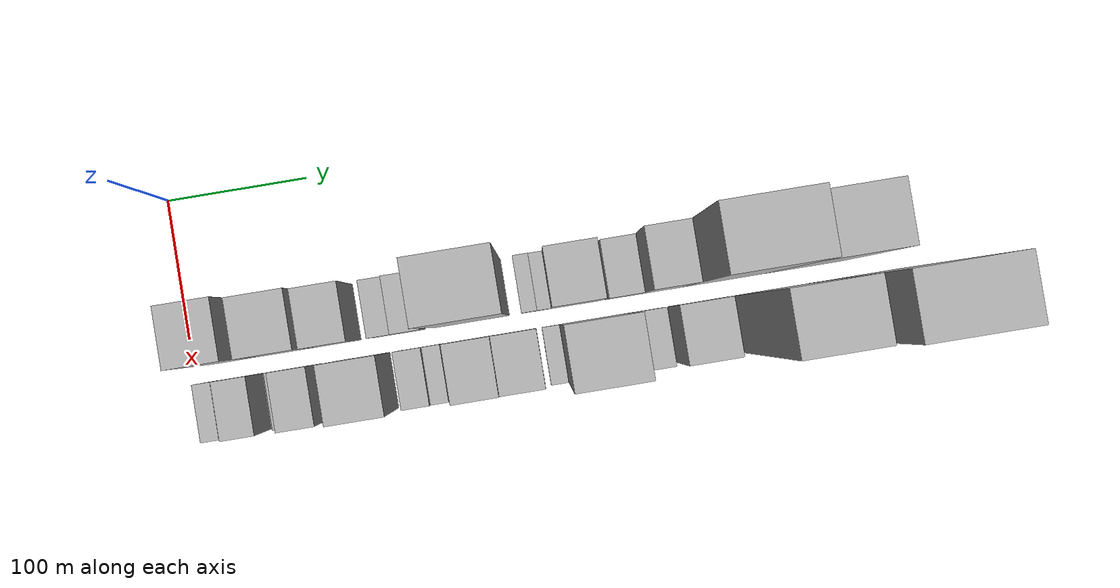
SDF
<sdf version="1.6">
 <world name="default">
  <model name="building_15">
   <static>1</static>
   <pose>100.0000 32.4129 0 0.000000 0.000000 0.000000</pose>
   <link name="link">
    <pose>0 0 51.00 0 0 0</pose>
    <collision name="collision"><geometry><box><size>40.0000 35.5591 102.0000</size></box></geometry></collision>
    <visual name="visual">
     <cast_shadows>0</cast_shadows>
     <geometry><box><size>40.0000 35.5591 102.0000</size></box></geometry>
     <material>
      <script>
       <uri>model://HANNAS_wall/materials/scripts</uri>
       <uri>model://HANNAS_wall/materials/textures</uri>
       <name>vrc/HANNAS_wall</name>
      </script>
     </material>
    </visual>
   </link>
  </model>
  <model name="building_16">
   <static>1</static>
   <pose>100.0000 69.4691 0 0.000000 0.000000 0.000000</pose>
   <link name="link">
    <pose>0 0 37.50 0 0 0</pose>
    <collision name="collision"><geometry><box><size>40.0000 38.5532 75.0000</size></box></geometry></collision>
    <visual name="visual">
     <cast_shadows>0</cast_shadows>
     <geometry><box><size>40.0000 38.5532 75.0000</size></box></geometry>
     <material>
      <script>
       <uri>model://HANNAS_wall/materials/scripts</uri>
       <uri>model://HANNAS_wall/materials/textures</uri>
       <name>vrc/HANNAS_wall</name>
      </script>
     </material>
    </visual>
   </link>
  </model>
  <model name="building_17">
   <static>1</static>
   <pose>100.0000 104.5784 0 0.000000 0.000000 0.000000</pose>
   <link name="link">
    <pose>0 0 30.00 0 0 0</pose>
    <collision name="collision"><geometry><box><size>40.0000 31.6654 60.0000</size></box></geometry></collision>
    <visual name="visual">
     <cast_shadows>0</cast_shadows>
     <geometry><box><size>40.0000 31.6654 60.0000</size></box></geometry>
     <material>
      <script>
       <uri>model://HANNAS_wall/materials/scripts</uri>
       <uri>model://HANNAS_wall/materials/textures</uri>
       <name>vrc/HANNAS_wall</name>
      </script>
     </material>
    </visual>
   </link>
  </model>
  <model name="building_18">
   <static>1</static>
   <pose>100.0000 137.7473 0 0.000000 0.000000 0.000000</pose>
   <link name="link">
    <pose>0 0 16.50 0 0 0</pose>
    <collision name="collision"><geometry><box><size>40.0000 16.6725 33.0000</size></box></geometry></collision>
    <visual name="visual">
     <cast_shadows>0</cast_shadows>
     <geometry><box><size>40.0000 16.6725 33.0000</size></box></geometry>
     <material>
      <script>
       <uri>model://HANNAS_wall/materials/scripts</uri>
       <uri>model://HANNAS_wall/materials/textures</uri>
       <name>vrc/HANNAS_wall</name>
      </script>
     </material>
    </visual>
   </link>
  </model>
  <model name="building_19">
   <static>1</static>
   <pose>100.0000 156.4100 0 0.000000 0.000000 0.000000</pose>
   <link name="link">
    <pose>0 0 19.50 0 0 0</pose>
    <collision name="collision"><geometry><box><size>40.0000 20.6530 39.0000</size></box></geometry></collision>
    <visual name="visual">
     <cast_shadows>0</cast_shadows>
     <geometry><box><size>40.0000 20.6530 39.0000</size></box></geometry>
     <material>
      <script>
       <uri>model://HANNAS_wall/materials/scripts</uri>
       <uri>model://HANNAS_wall/materials/textures</uri>
       <name>vrc/HANNAS_wall</name>
      </script>
     </material>
    </visual>
   </link>
  </model>
  <model name="building_20">
   <static>1</static>
   <pose>100.0000 200.9010 0 0.000000 0.000000 0.000000</pose>
   <link name="link">
    <pose>0 0 79.50 0 0 0</pose>
    <collision name="collision"><geometry><box><size>40.0000 52.3291 159.0000</size></box></geometry></collision>
    <visual name="visual">
     <cast_shadows>0</cast_shadows>
     <geometry><box><size>40.0000 52.3291 159.0000</size></box></geometry>
     <material>
      <script>
       <uri>model://HANNAS_wall/materials/scripts</uri>
       <uri>model://HANNAS_wall/materials/textures</uri>
       <name>vrc/HANNAS_wall</name>
      </script>
     </material>
    </visual>
   </link>
  </model>
  <model name="building_21">
   <static>1</static>
   <pose>100.0000 241.4765 0 0.000000 0.000000 0.000000</pose>
   <link name="link">
    <pose>0 0 13.50 0 0 0</pose>
    <collision name="collision"><geometry><box><size>40.0000 10.8219 27.0000</size></box></geometry></collision>
    <visual name="visual">
     <cast_shadows>0</cast_shadows>
     <geometry><box><size>40.0000 10.8219 27.0000</size></box></geometry>
     <material>
      <script>
       <uri>model://HANNAS_wall/materials/scripts</uri>
       <uri>model://HANNAS_wall/materials/textures</uri>
       <name>vrc/HANNAS_wall</name>
      </script>
     </material>
    </visual>
   </link>
  </model>
  <model name="building_22">
   <static>1</static>
   <pose>100.0000 251.8419 0 0.000000 0.000000 0.000000</pose>
   <link name="link">
    <pose>0 0 12.00 0 0 0</pose>
    <collision name="collision"><geometry><box><size>40.0000 9.9089 24.0000</size></box></geometry></collision>
    <visual name="visual">
     <cast_shadows>0</cast_shadows>
     <geometry><box><size>40.0000 9.9089 24.0000</size></box></geometry>
     <material>
      <script>
       <uri>model://HANNAS_wall/materials/scripts</uri>
       <uri>model://HANNAS_wall/materials/textures</uri>
       <name>vrc/HANNAS_wall</name>
      </script>
     </material>
    </visual>
   </link>
  </model>
  <model name="building_23">
   <static>1</static>
   <pose>100.0000 274.8817 0 0.000000 0.000000 0.000000</pose>
   <link name="link">
    <pose>0 0 33.00 0 0 0</pose>
    <collision name="collision"><geometry><box><size>40.0000 36.1708 66.0000</size></box></geometry></collision>
    <visual name="visual">
     <cast_shadows>0</cast_shadows>
     <geometry><box><size>40.0000 36.1708 66.0000</size></box></geometry>
     <material>
      <script>
       <uri>model://HANNAS_wall/materials/scripts</uri>
       <uri>model://HANNAS_wall/materials/textures</uri>
       <name>vrc/HANNAS_wall</name>
      </script>
     </material>
    </visual>
   </link>
  </model>
  <model name="building_24">
   <static>1</static>
   <pose>100.0000 308.1856 0 0.000000 0.000000 0.000000</pose>
   <link name="link">
    <pose>0 0 21.00 0 0 0</pose>
    <collision name="collision"><geometry><box><size>40.0000 24.4369 42.0000</size></box></geometry></collision>
    <visual name="visual">
     <cast_shadows>0</cast_shadows>
     <geometry><box><size>40.0000 24.4369 42.0000</size></box></geometry>
     <material>
      <script>
       <uri>model://HANNAS_wall/materials/scripts</uri>
       <uri>model://HANNAS_wall/materials/textures</uri>
       <name>vrc/HANNAS_wall</name>
      </script>
     </material>
    </visual>
   </link>
  </model>
  <model name="building_25">
   <static>1</static>
   <pose>100.0000 335.5236 0 0.000000 0.000000 0.000000</pose>
   <link name="link">
    <pose>0 0 48.00 0 0 0</pose>
    <collision name="collision"><geometry><box><size>40.0000 30.2390 96.0000</size></box></geometry></collision>
    <visual name="visual">
     <cast_shadows>0</cast_shadows>
     <geometry><box><size>40.0000 30.2390 96.0000</size></box></geometry>
     <material>
      <script>
       <uri>model://HANNAS_wall/materials/scripts</uri>
       <uri>model://HANNAS_wall/materials/textures</uri>
       <name>vrc/HANNAS_wall</name>
      </script>
     </material>
    </visual>
   </link>
  </model>
  <model name="building_26">
   <static>1</static>
   <pose>100.0000 380.3939 0 0.000000 0.000000 0.000000</pose>
   <link name="link">
    <pose>0 0 93.00 0 0 0</pose>
    <collision name="collision"><geometry><box><size>40.0000 59.5017 186.0000</size></box></geometry></collision>
    <visual name="visual">
     <cast_shadows>0</cast_shadows>
     <geometry><box><size>40.0000 59.5017 186.0000</size></box></geometry>
     <material>
      <script>
       <uri>model://HANNAS_wall/materials/scripts</uri>
       <uri>model://HANNAS_wall/materials/textures</uri>
       <name>vrc/HANNAS_wall</name>
      </script>
     </material>
    </visual>
   </link>
  </model>
  <model name="building_27">
   <static>1</static>
   <pose>100.0000 438.4146 0 0.000000 0.000000 0.000000</pose>
   <link name="link">
    <pose>0 0 73.50 0 0 0</pose>
    <collision name="collision"><geometry><box><size>40.0000 56.5395 147.0000</size></box></geometry></collision>
    <visual name="visual">
     <cast_shadows>0</cast_shadows>
     <geometry><box><size>40.0000 56.5395 147.0000</size></box></geometry>
     <material>
      <script>
       <uri>model://HANNAS_wall/materials/scripts</uri>
       <uri>model://HANNAS_wall/materials/textures</uri>
       <name>vrc/HANNAS_wall</name>
      </script>
     </material>
    </visual>
   </link>
  </model>
  <model name="building_40">
   <static>1</static>
   <pose>152.0000 11.8453 0 0.000000 0.000000 0.000000</pose>
   <link name="link">
    <pose>0 0 13.50 0 0 0</pose>
    <collision name="collision"><geometry><box><size>40.0000 12.7696 27.0000</size></box></geometry></collision>
    <visual name="visual">
     <cast_shadows>0</cast_shadows>
     <geometry><box><size>40.0000 12.7696 27.0000</size></box></geometry>
     <material>
      <script>
       <uri>model://HANNAS_wall/materials/scripts</uri>
       <uri>model://HANNAS_wall/materials/textures</uri>
       <name>vrc/HANNAS_wall</name>
      </script>
     </material>
    </visual>
   </link>
  </model>
  <model name="building_41">
   <static>1</static>
   <pose>152.0000 35.9903 0 0.000000 0.000000 0.000000</pose>
   <link name="link">
    <pose>0 0 22.50 0 0 0</pose>
    <collision name="collision"><geometry><box><size>40.0000 23.5203 45.0000</size></box></geometry></collision>
    <visual name="visual">
     <cast_shadows>0</cast_shadows>
     <geometry><box><size>40.0000 23.5203 45.0000</size></box></geometry>
     <material>
      <script>
       <uri>model://HANNAS_wall/materials/scripts</uri>
       <uri>model://HANNAS_wall/materials/textures</uri>
       <name>vrc/HANNAS_wall</name>
      </script>
     </material>
    </visual>
   </link>
  </model>
  <model name="building_42">
   <static>1</static>
   <pose>152.0000 58.6183 0 0.000000 0.000000 0.000000</pose>
   <link name="link">
    <pose>0 0 10.50 0 0 0</pose>
    <collision name="collision"><geometry><box><size>40.0000 9.7357 21.0000</size></box></geometry></collision>
    <visual name="visual">
     <cast_shadows>0</cast_shadows>
     <geometry><box><size>40.0000 9.7357 21.0000</size></box></geometry>
     <material>
      <script>
       <uri>model://HANNAS_wall/materials/scripts</uri>
       <uri>model://HANNAS_wall/materials/textures</uri>
       <name>vrc/HANNAS_wall</name>
      </script>
     </material>
    </visual>
   </link>
  </model>
  <model name="building_43">
   <static>1</static>
   <pose>152.0000 76.5070 0 0.000000 0.000000 0.000000</pose>
   <link name="link">
    <pose>0 0 25.50 0 0 0</pose>
    <collision name="collision"><geometry><box><size>40.0000 26.0417 51.0000</size></box></geometry></collision>
    <visual name="visual">
     <cast_shadows>0</cast_shadows>
     <geometry><box><size>40.0000 26.0417 51.0000</size></box></geometry>
     <material>
      <script>
       <uri>model://HANNAS_wall/materials/scripts</uri>
       <uri>model://HANNAS_wall/materials/textures</uri>
       <name>vrc/HANNAS_wall</name>
      </script>
     </material>
    </visual>
   </link>
  </model>
  <model name="building_44">
   <static>1</static>
   <pose>152.0000 119.2971 0 0.000000 0.000000 0.000000</pose>
   <link name="link">
    <pose>0 0 34.50 0 0 0</pose>
    <collision name="collision"><geometry><box><size>40.0000 39.5385 69.0000</size></box></geometry></collision>
    <visual name="visual">
     <cast_shadows>0</cast_shadows>
     <geometry><box><size>40.0000 39.5385 69.0000</size></box></geometry>
     <material>
      <script>
       <uri>model://HANNAS_wall/materials/scripts</uri>
       <uri>model://HANNAS_wall/materials/textures</uri>
       <name>vrc/HANNAS_wall</name>
      </script>
     </material>
    </visual>
   </link>
  </model>
  <model name="building_45">
   <static>1</static>
   <pose>152.0000 154.7893 0 0.000000 0.000000 0.000000</pose>
   <link name="link">
    <pose>0 0 16.50 0 0 0</pose>
    <collision name="collision"><geometry><box><size>40.0000 19.4459 33.0000</size></box></geometry></collision>
    <visual name="visual">
     <cast_shadows>0</cast_shadows>
     <geometry><box><size>40.0000 19.4459 33.0000</size></box></geometry>
     <material>
      <script>
       <uri>model://HANNAS_wall/materials/scripts</uri>
       <uri>model://HANNAS_wall/materials/textures</uri>
       <name>vrc/HANNAS_wall</name>
      </script>
     </material>
    </visual>
   </link>
  </model>
  <model name="building_46">
   <static>1</static>
   <pose>152.0000 170.8584 0 0.000000 0.000000 0.000000</pose>
   <link name="link">
    <pose>0 0 13.50 0 0 0</pose>
    <collision name="collision"><geometry><box><size>40.0000 12.6923 27.0000</size></box></geometry></collision>
    <visual name="visual">
     <cast_shadows>0</cast_shadows>
     <geometry><box><size>40.0000 12.6923 27.0000</size></box></geometry>
     <material>
      <script>
       <uri>model://HANNAS_wall/materials/scripts</uri>
       <uri>model://HANNAS_wall/materials/textures</uri>
       <name>vrc/HANNAS_wall</name>
      </script>
     </material>
    </visual>
   </link>
  </model>
  <model name="building_47">
   <static>1</static>
   <pose>152.0000 197.2607 0 0.000000 0.000000 0.000000</pose>
   <link name="link">
    <pose>0 0 31.50 0 0 0</pose>
    <collision name="collision"><geometry><box><size>40.0000 32.1123 63.0000</size></box></geometry></collision>
    <visual name="visual">
     <cast_shadows>0</cast_shadows>
     <geometry><box><size>40.0000 32.1123 63.0000</size></box></geometry>
     <material>
      <script>
       <uri>model://HANNAS_wall/materials/scripts</uri>
       <uri>model://HANNAS_wall/materials/textures</uri>
       <name>vrc/HANNAS_wall</name>
      </script>
     </material>
    </visual>
   </link>
  </model>
  <model name="building_48">
   <static>1</static>
   <pose>152.0000 228.7948 0 0.000000 0.000000 0.000000</pose>
   <link name="link">
    <pose>0 0 28.50 0 0 0</pose>
    <collision name="collision"><geometry><box><size>40.0000 30.9560 57.0000</size></box></geometry></collision>
    <visual name="visual">
     <cast_shadows>0</cast_shadows>
     <geometry><box><size>40.0000 30.9560 57.0000</size></box></geometry>
     <material>
      <script>
       <uri>model://HANNAS_wall/materials/scripts</uri>
       <uri>model://HANNAS_wall/materials/textures</uri>
       <name>vrc/HANNAS_wall</name>
      </script>
     </material>
    </visual>
   </link>
  </model>
  <model name="building_49">
   <static>1</static>
   <pose>152.0000 254.3336 0 0.000000 0.000000 0.000000</pose>
   <link name="link">
    <pose>0 0 13.50 0 0 0</pose>
    <collision name="collision"><geometry><box><size>40.0000 12.1215 27.0000</size></box></geometry></collision>
    <visual name="visual">
     <cast_shadows>0</cast_shadows>
     <geometry><box><size>40.0000 12.1215 27.0000</size></box></geometry>
     <material>
      <script>
       <uri>model://HANNAS_wall/materials/scripts</uri>
       <uri>model://HANNAS_wall/materials/textures</uri>
       <name>vrc/HANNAS_wall</name>
      </script>
     </material>
    </visual>
   </link>
  </model>
  <model name="building_50">
   <static>1</static>
   <pose>152.0000 283.8129 0 0.000000 0.000000 0.000000</pose>
   <link name="link">
    <pose>0 0 70.50 0 0 0</pose>
    <collision name="collision"><geometry><box><size>40.0000 46.8372 141.0000</size></box></geometry></collision>
    <visual name="visual">
     <cast_shadows>0</cast_shadows>
     <geometry><box><size>40.0000 46.8372 141.0000</size></box></geometry>
     <material>
      <script>
       <uri>model://HANNAS_wall/materials/scripts</uri>
       <uri>model://HANNAS_wall/materials/textures</uri>
       <name>vrc/HANNAS_wall</name>
      </script>
     </material>
    </visual>
   </link>
  </model>
  <model name="building_51">
   <static>1</static>
   <pose>152.0000 320.0237 0 0.000000 0.000000 0.000000</pose>
   <link name="link">
    <pose>0 0 22.50 0 0 0</pose>
    <collision name="collision"><geometry><box><size>40.0000 25.5846 45.0000</size></box></geometry></collision>
    <visual name="visual">
     <cast_shadows>0</cast_shadows>
     <geometry><box><size>40.0000 25.5846 45.0000</size></box></geometry>
     <material>
      <script>
       <uri>model://HANNAS_wall/materials/scripts</uri>
       <uri>model://HANNAS_wall/materials/textures</uri>
       <name>vrc/HANNAS_wall</name>
      </script>
     </material>
    </visual>
   </link>
  </model>
  <model name="building_52">
   <static>1</static>
   <pose>152.0000 356.8944 0 0.000000 0.000000 0.000000</pose>
   <link name="link">
    <pose>0 0 31.50 0 0 0</pose>
    <collision name="collision"><geometry><box><size>40.0000 36.1568 63.0000</size></box></geometry></collision>
    <visual name="visual">
     <cast_shadows>0</cast_shadows>
     <geometry><box><size>40.0000 36.1568 63.0000</size></box></geometry>
     <material>
      <script>
       <uri>model://HANNAS_wall/materials/scripts</uri>
       <uri>model://HANNAS_wall/materials/textures</uri>
       <name>vrc/HANNAS_wall</name>
      </script>
     </material>
    </visual>
   </link>
  </model>
  <model name="building_53">
   <static>1</static>
   <pose>152.0000 379.4203 0 0.000000 0.000000 0.000000</pose>
   <link name="link">
    <pose>0 0 9.00 0 0 0</pose>
    <collision name="collision"><geometry><box><size>40.0000 8.8950 18.0000</size></box></geometry></collision>
    <visual name="visual">
     <cast_shadows>0</cast_shadows>
     <geometry><box><size>40.0000 8.8950 18.0000</size></box></geometry>
     <material>
      <script>
       <uri>model://HANNAS_wall/materials/scripts</uri>
       <uri>model://HANNAS_wall/materials/textures</uri>
       <name>vrc/HANNAS_wall</name>
      </script>
     </material>
    </visual>
   </link>
  </model>
  <model name="building_54">
   <static>1</static>
   <pose>152.0000 410.0173 0 0.000000 0.000000 0.000000</pose>
   <link name="link">
    <pose>0 0 85.50 0 0 0</pose>
    <collision name="collision"><geometry><box><size>40.0000 52.2990 171.0000</size></box></geometry></collision>
    <visual name="visual">
     <cast_shadows>0</cast_shadows>
     <geometry><box><size>40.0000 52.2990 171.0000</size></box></geometry>
     <material>
      <script>
       <uri>model://HANNAS_wall/materials/scripts</uri>
       <uri>model://HANNAS_wall/materials/textures</uri>
       <name>vrc/HANNAS_wall</name>
      </script>
     </material>
    </visual>
   </link>
  </model>
  <model name="building_55">
   <static>1</static>
   <pose>152.0000 473.4425 0 0.000000 0.000000 0.000000</pose>
   <link name="link">
    <pose>0 0 99.00 0 0 0</pose>
    <collision name="collision"><geometry><box><size>40.0000 64.5515 198.0000</size></box></geometry></collision>
    <visual name="visual">
     <cast_shadows>0</cast_shadows>
     <geometry><box><size>40.0000 64.5515 198.0000</size></box></geometry>
     <material>
      <script>
       <uri>model://HANNAS_wall/materials/scripts</uri>
       <uri>model://HANNAS_wall/materials/textures</uri>
       <name>vrc/HANNAS_wall</name>
      </script>
     </material>
    </visual>
   </link>
  </model>
 </world>
</sdf>
